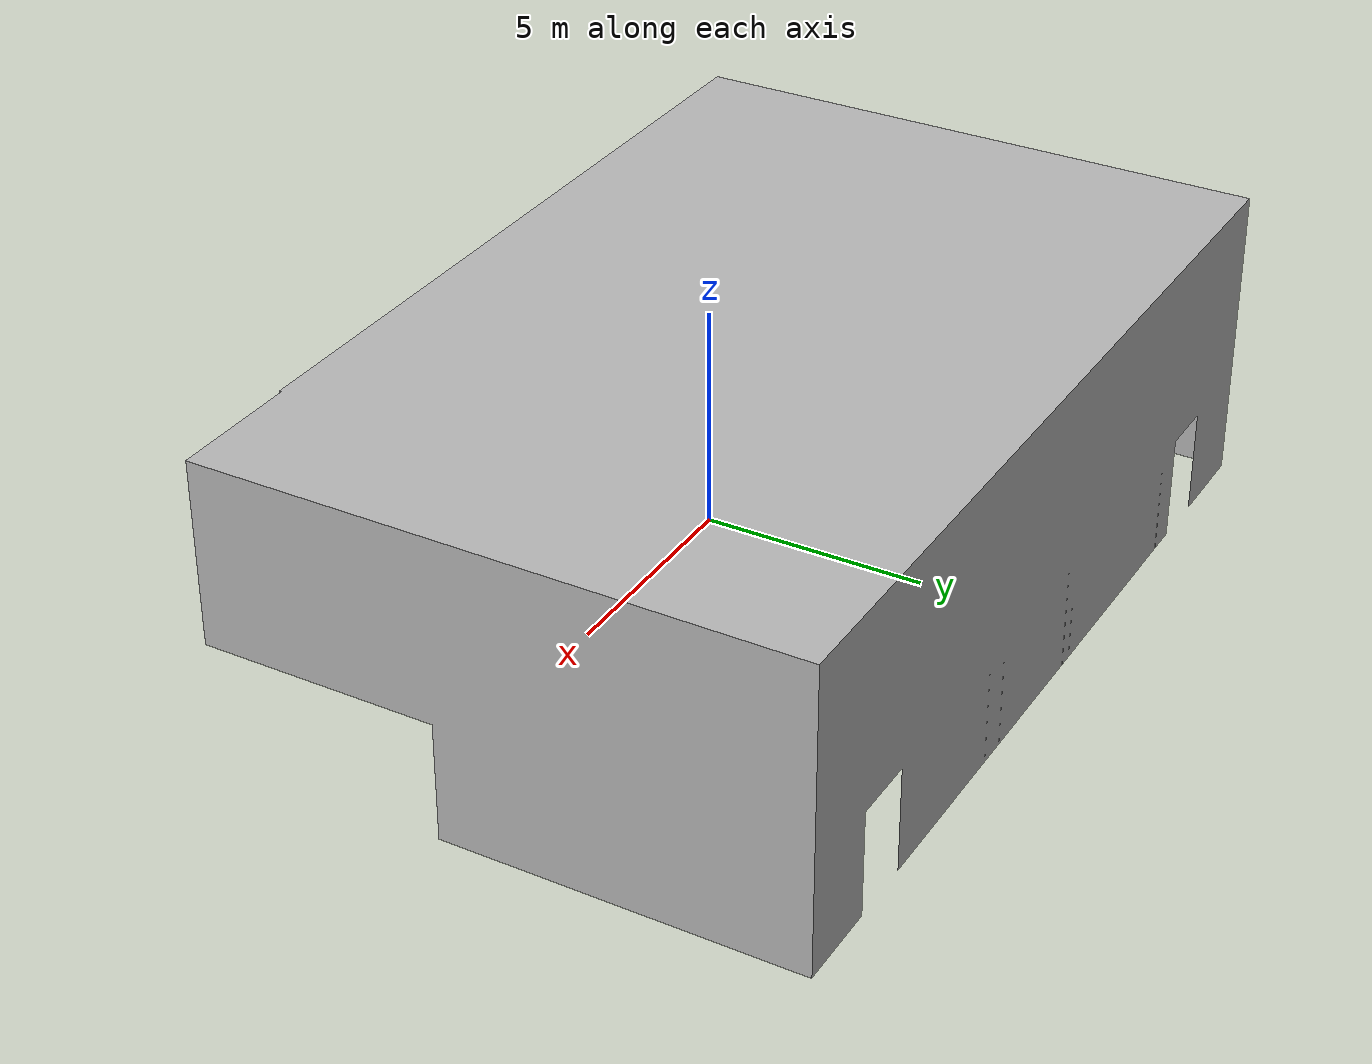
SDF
<?xml version="1.0" ?>
<sdf version="1.5">
  <model name="bauzil_room">
    <pose>0 0 0  0 0 0</pose>
    <static>true</static>
    <link name="body">
      <collision name="bauzil_collision">
        <geometry>
          <mesh><uri>model://bauzil_room/meshes/bauzil_room_no_floor.stl</uri></mesh>
        </geometry>
      </collision>
      <visual name="bauzil_visual">
        <geometry>
          <mesh><uri>model://bauzil_room/meshes/bauzil_room_no_floor.stl</uri></mesh>
        </geometry>
      </visual>
    </link>
  </model>
</sdf>
